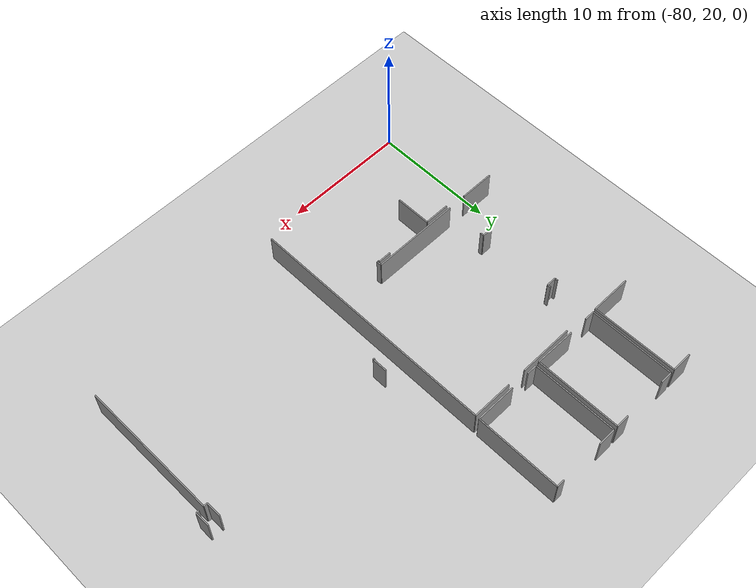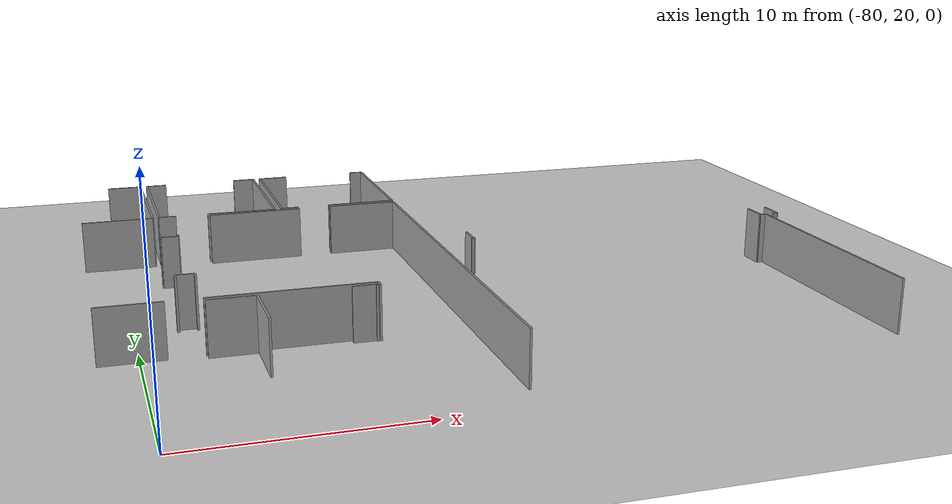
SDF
<sdf version="1.6">
 <world name="default">
  <model name="ground_plane">
   <static>1</static>
   <link name="link">
    <collision name="collision">
     <geometry><plane><normal>0 0 1</normal><size>100 100</size></plane></geometry>
     <surface><friction><ode><mu>100</mu><mu2>50</mu2></ode></friction></surface>
    </collision>
    <visual name="visual">
     <cast_shadows>0</cast_shadows>
     <geometry><plane><normal>0 0 1</normal><size>100 100</size></plane></geometry>
     <material>
      <script><uri>file://media/materials/scripts/gazebo.material</uri><name>Gazebo/Grey</name></script>
     </material>
    </visual>
   </link>
  </model>
  <model name="0510035741_A_40_1_104">
   <static>1</static>
   <link name="Wall_7">
    <collision name="Wall_7_Collision">
     <geometry><box><size>3.38631326954 0.1 2.5</size></box></geometry>
     <pose>1.69315663477 0 1.25 0 0 0</pose>
    </collision>
    <visual name="Wall_7_Visual">
     <pose>1.69315663477 0 1.25 0 0 0</pose>
     <geometry><box><size>3.38631326954 0.1 2.5</size></box></geometry>
     <material>
      <script><uri>file://media/materials/scripts/gazebo.material</uri><name>Gazebo/Grey</name></script>
      <ambient>1 1 1 1</ambient>
     </material>
    </visual>
    <pose>15.7619014357 -7.046437348 0 0 0 3.14159265359</pose>
   </link>
   <link name="Wall_11">
    <collision name="Wall_11_Collision">
     <geometry><box><size>1.69010864803 0.1 2.5</size></box></geometry>
     <pose>0.845054324014 0 1.25 0 0 0</pose>
    </collision>
    <visual name="Wall_11_Visual">
     <pose>0.845054324014 0 1.25 0 0 0</pose>
     <geometry><box><size>1.69010864803 0.1 2.5</size></box></geometry>
     <material>
      <script><uri>file://media/materials/scripts/gazebo.material</uri><name>Gazebo/Grey</name></script>
      <ambient>1 1 1 1</ambient>
     </material>
    </visual>
    <pose>14.0197230142 -0.00634997237761 0 0 0 0.0</pose>
   </link>
   <link name="Wall_12">
    <collision name="Wall_12_Collision">
     <geometry><box><size>7.04027993177 0.1 2.5</size></box></geometry>
     <pose>3.52013996588 0 1.25 0 0 0</pose>
    </collision>
    <visual name="Wall_12_Visual">
     <pose>3.52013996588 0 1.25 0 0 0</pose>
     <geometry><box><size>7.04027993177 0.1 2.5</size></box></geometry>
     <material>
      <script><uri>file://media/materials/scripts/gazebo.material</uri><name>Gazebo/Grey</name></script>
      <ambient>1 1 1 1</ambient>
     </material>
    </visual>
    <pose>15.7098316622 -0.00634997237761 0 0 0 -1.56340027881</pose>
   </link>
   <link name="Wall_13">
    <collision name="Wall_13_Collision">
     <geometry><box><size>7.04008737562 0.1 2.5</size></box></geometry>
     <pose>3.52004368781 0 1.25 0 0 0</pose>
    </collision>
    <visual name="Wall_13_Visual">
     <pose>3.52004368781 0 1.25 0 0 0</pose>
     <geometry><box><size>7.04008737562 0.1 2.5</size></box></geometry>
     <material>
      <script><uri>file://media/materials/scripts/gazebo.material</uri><name>Gazebo/Grey</name></script>
      <ambient>1 1 1 1</ambient>
     </material>
    </visual>
    <pose>21.8466989669 -7.046437348 0 0 0 1.57079632679</pose>
   </link>
   <link name="Wall_14">
    <collision name="Wall_14_Collision">
     <geometry><box><size>1.0949892368 0.1 2.5</size></box></geometry>
     <pose>0.547494618398 0 1.25 0 0 0</pose>
    </collision>
    <visual name="Wall_14_Visual">
     <pose>0.547494618398 0 1.25 0 0 0</pose>
     <geometry><box><size>1.0949892368 0.1 2.5</size></box></geometry>
     <material>
      <script><uri>file://media/materials/scripts/gazebo.material</uri><name>Gazebo/Grey</name></script>
      <ambient>1 1 1 1</ambient>
     </material>
    </visual>
    <pose>21.8466989669 -0.00634997237761 0 0 0 3.14159265359</pose>
   </link>
   <link name="Wall_15">
    <collision name="Wall_15_Collision">
     <geometry><box><size>1.01218559699 0.1 2.5</size></box></geometry>
     <pose>0.506092798496 0 1.25 0 0 0</pose>
    </collision>
    <visual name="Wall_15_Visual">
     <pose>0.506092798496 0 1.25 0 0 0</pose>
     <geometry><box><size>1.01218559699 0.1 2.5</size></box></geometry>
     <material>
      <script><uri>file://media/materials/scripts/gazebo.material</uri><name>Gazebo/Grey</name></script>
      <ambient>1 1 1 1</ambient>
     </material>
    </visual>
    <pose>17.0753297223 -0.00634997237761 0 0 0 3.14159265359</pose>
   </link>
   <link name="Wall_16">
    <collision name="Wall_16_Collision">
     <geometry><box><size>6.97709564963 0.1 2.5</size></box></geometry>
     <pose>3.48854782482 0 1.25 0 0 0</pose>
    </collision>
    <visual name="Wall_16_Visual">
     <pose>3.48854782482 0 1.25 0 0 0</pose>
     <geometry><box><size>6.97709564963 0.1 2.5</size></box></geometry>
     <material>
      <script><uri>file://media/materials/scripts/gazebo.material</uri><name>Gazebo/Grey</name></script>
      <ambient>1 1 1 1</ambient>
     </material>
    </visual>
    <pose>16.0631441253 -0.00634997237761 0 0 0 -1.57079632679</pose>
   </link>
   <link name="Wall_17">
    <collision name="Wall_17_Collision">
     <geometry><box><size>0.840482343902 0.1 2.5</size></box></geometry>
     <pose>0.420241171951 0 1.25 0 0 0</pose>
    </collision>
    <visual name="Wall_17_Visual">
     <pose>0.420241171951 0 1.25 0 0 0</pose>
     <geometry><box><size>0.840482343902 0.1 2.5</size></box></geometry>
     <material>
      <script><uri>file://media/materials/scripts/gazebo.material</uri><name>Gazebo/Grey</name></script>
      <ambient>1 1 1 1</ambient>
     </material>
    </visual>
    <pose>16.0631441253 -6.98344562201 0 0 0 0.0</pose>
   </link>
   <link name="Wall_18">
    <collision name="Wall_18_Collision">
     <geometry><box><size>3.37775672619 0.1 2.5</size></box></geometry>
     <pose>1.68887836309 0 1.25 0 0 0</pose>
    </collision>
    <visual name="Wall_18_Visual">
     <pose>1.68887836309 0 1.25 0 0 0</pose>
     <geometry><box><size>3.37775672619 0.1 2.5</size></box></geometry>
     <material>
      <script><uri>file://media/materials/scripts/gazebo.material</uri><name>Gazebo/Grey</name></script>
      <ambient>1 1 1 1</ambient>
     </material>
    </visual>
    <pose>18.4695296575 -6.98344562201 0 0 0 -0.0186500636139</pose>
   </link>
   <link name="Wall_19">
    <collision name="Wall_19_Collision">
     <geometry><box><size>6.97074567726 0.1 2.5</size></box></geometry>
     <pose>3.48537283863 0 1.25 0 0 0</pose>
    </collision>
    <visual name="Wall_19_Visual">
     <pose>3.48537283863 0 1.25 0 0 0</pose>
     <geometry><box><size>6.97074567726 0.1 2.5</size></box></geometry>
     <material>
      <script><uri>file://media/materials/scripts/gazebo.material</uri><name>Gazebo/Grey</name></script>
      <ambient>1 1 1 1</ambient>
     </material>
    </visual>
    <pose>22.2142353681 -6.97455566068 0 0 0 1.57079632679</pose>
   </link>
   <link name="Wall_20">
    <collision name="Wall_20_Collision">
     <geometry><box><size>1.48132155625 0.1 2.5</size></box></geometry>
     <pose>0.740660778126 0 1.25 0 0 0</pose>
    </collision>
    <visual name="Wall_20_Visual">
     <pose>0.740660778126 0 1.25 0 0 0</pose>
     <geometry><box><size>1.48132155625 0.1 2.5</size></box></geometry>
     <material>
      <script><uri>file://media/materials/scripts/gazebo.material</uri><name>Gazebo/Grey</name></script>
      <ambient>1 1 1 1</ambient>
     </material>
    </visual>
    <pose>22.2142353681 -0.00380998342657 0 0 0 0.0</pose>
   </link>
   <link name="Wall_21">
    <collision name="Wall_21_Collision">
     <geometry><box><size>0.653539157105 0.1 2.5</size></box></geometry>
     <pose>0.326769578552 0 1.25 0 0 0</pose>
    </collision>
    <visual name="Wall_21_Visual">
     <pose>0.326769578552 0 1.25 0 0 0</pose>
     <geometry><box><size>0.653539157105 0.1 2.5</size></box></geometry>
     <material>
      <script><uri>file://media/materials/scripts/gazebo.material</uri><name>Gazebo/Grey</name></script>
      <ambient>1 1 1 1</ambient>
     </material>
    </visual>
    <pose>27.355173005 -0.00380998342657 0 0 0 0.0</pose>
   </link>
   <link name="Wall_22">
    <collision name="Wall_22_Collision">
     <geometry><box><size>6.97074567726 0.1 2.5</size></box></geometry>
     <pose>3.48537283863 0 1.25 0 0 0</pose>
    </collision>
    <visual name="Wall_22_Visual">
     <pose>3.48537283863 0 1.25 0 0 0</pose>
     <geometry><box><size>6.97074567726 0.1 2.5</size></box></geometry>
     <material>
      <script><uri>file://media/materials/scripts/gazebo.material</uri><name>Gazebo/Grey</name></script>
      <ambient>1 1 1 1</ambient>
     </material>
    </visual>
    <pose>28.0087121621 -0.00380998342657 0 0 0 -1.57079632679</pose>
   </link>
   <link name="Wall_23">
    <collision name="Wall_23_Collision">
     <geometry><box><size>3.36446936456 0.1 2.5</size></box></geometry>
     <pose>1.68223468228 0 1.25 0 0 0</pose>
    </collision>
    <visual name="Wall_23_Visual">
     <pose>1.68223468228 0 1.25 0 0 0</pose>
     <geometry><box><size>3.36446936456 0.1 2.5</size></box></geometry>
     <material>
      <script><uri>file://media/materials/scripts/gazebo.material</uri><name>Gazebo/Grey</name></script>
      <ambient>1 1 1 1</ambient>
     </material>
    </visual>
    <pose>28.0087121621 -6.97455566068 0 0 0 3.14159265359</pose>
   </link>
   <link name="Wall_24">
    <collision name="Wall_24_Collision">
     <geometry><box><size>0.871470209105 0.1 2.5</size></box></geometry>
     <pose>0.435735104552 0 1.25 0 0 0</pose>
    </collision>
    <visual name="Wall_24_Visual">
     <pose>0.435735104552 0 1.25 0 0 0</pose>
     <geometry><box><size>0.871470209105 0.1 2.5</size></box></geometry>
     <material>
      <script><uri>file://media/materials/scripts/gazebo.material</uri><name>Gazebo/Grey</name></script>
      <ambient>1 1 1 1</ambient>
     </material>
    </visual>
    <pose>23.0857055772 -6.97455566068 0 0 0 3.14159265359</pose>
   </link>
   <link name="Wall_53">
    <collision name="Wall_53_Collision">
     <geometry><box><size>2.10819082937 0.1 2.5</size></box></geometry>
     <pose>1.05409541468 0 1.25 0 0 0</pose>
    </collision>
    <visual name="Wall_53_Visual">
     <pose>1.05409541468 0 1.25 0 0 0</pose>
     <geometry><box><size>2.10819082937 0.1 2.5</size></box></geometry>
     <material>
      <script><uri>file://media/materials/scripts/gazebo.material</uri><name>Gazebo/Grey</name></script>
      <ambient>1 1 1 1</ambient>
     </material>
    </visual>
    <pose>16.6610575244 -20.8436573301 0 0 0 0.0</pose>
   </link>
   <link name="Wall_54">
    <collision name="Wall_54_Collision">
     <geometry><box><size>2.92251128708 0.1 2.5</size></box></geometry>
     <pose>1.46125564354 0 1.25 0 0 0</pose>
    </collision>
    <visual name="Wall_54_Visual">
     <pose>1.46125564354 0 1.25 0 0 0</pose>
     <geometry><box><size>2.92251128708 0.1 2.5</size></box></geometry>
     <material>
      <script><uri>file://media/materials/scripts/gazebo.material</uri><name>Gazebo/Grey</name></script>
      <ambient>1 1 1 1</ambient>
     </material>
    </visual>
    <pose>18.7692483538 -20.8436573301 0 0 0 -1.57079632679</pose>
   </link>
   <link name="Wall_59">
    <collision name="Wall_59_Collision">
     <geometry><box><size>0.264158850909 0.1 2.5</size></box></geometry>
     <pose>0.132079425454 0 1.25 0 0 0</pose>
    </collision>
    <visual name="Wall_59_Visual">
     <pose>0.132079425454 0 1.25 0 0 0</pose>
     <geometry><box><size>0.264158850909 0.1 2.5</size></box></geometry>
     <material>
      <script><uri>file://media/materials/scripts/gazebo.material</uri><name>Gazebo/Grey</name></script>
      <ambient>1 1 1 1</ambient>
     </material>
    </visual>
    <pose>15.8264171551 -10.5318101866 0 0 0 -1.57079632679</pose>
   </link>
   <link name="Wall_60">
    <collision name="Wall_60_Collision">
     <geometry><box><size>0.801620512951 0.1 2.5</size></box></geometry>
     <pose>0.400810256475 0 1.25 0 0 0</pose>
    </collision>
    <visual name="Wall_60_Visual">
     <pose>0.400810256475 0 1.25 0 0 0</pose>
     <geometry><box><size>0.801620512951 0.1 2.5</size></box></geometry>
     <material>
      <script><uri>file://media/materials/scripts/gazebo.material</uri><name>Gazebo/Grey</name></script>
      <ambient>1 1 1 1</ambient>
     </material>
    </visual>
    <pose>15.8264171551 -10.7959690375 0 0 0 0.0</pose>
   </link>
   <link name="Wall_61">
    <collision name="Wall_61_Collision">
     <geometry><box><size>0.274572805608 0.1 2.5</size></box></geometry>
     <pose>0.137286402804 0 1.25 0 0 0</pose>
    </collision>
    <visual name="Wall_61_Visual">
     <pose>0.137286402804 0 1.25 0 0 0</pose>
     <geometry><box><size>0.274572805608 0.1 2.5</size></box></geometry>
     <material>
      <script><uri>file://media/materials/scripts/gazebo.material</uri><name>Gazebo/Grey</name></script>
      <ambient>1 1 1 1</ambient>
     </material>
    </visual>
    <pose>16.628037668 -10.7959690375 0 0 0 1.57079632679</pose>
   </link>
   <link name="Wall_62">
    <collision name="Wall_62_Collision">
     <geometry><box><size>0.308862656447 0.1 2.5</size></box></geometry>
     <pose>0.154431328224 0 1.25 0 0 0</pose>
    </collision>
    <visual name="Wall_62_Visual">
     <pose>0.154431328224 0 1.25 0 0 0</pose>
     <geometry><box><size>0.308862656447 0.1 2.5</size></box></geometry>
     <material>
      <script><uri>file://media/materials/scripts/gazebo.material</uri><name>Gazebo/Grey</name></script>
      <ambient>1 1 1 1</ambient>
     </material>
    </visual>
    <pose>16.683917425 -17.3407585677 0 0 0 1.57079632679</pose>
   </link>
   <link name="Wall_63">
    <collision name="Wall_63_Collision">
     <geometry><box><size>0.849880303021 0.1 2.5</size></box></geometry>
     <pose>0.42494015151 0 1.25 0 0 0</pose>
    </collision>
    <visual name="Wall_63_Visual">
     <pose>0.42494015151 0 1.25 0 0 0</pose>
     <geometry><box><size>0.849880303021 0.1 2.5</size></box></geometry>
     <material>
      <script><uri>file://media/materials/scripts/gazebo.material</uri><name>Gazebo/Grey</name></script>
      <ambient>1 1 1 1</ambient>
     </material>
    </visual>
    <pose>16.683917425 -17.0318959113 0 0 0 3.14159265359</pose>
   </link>
   <link name="Wall_64">
    <collision name="Wall_64_Collision">
     <geometry><box><size>0.305560670811 0.1 2.5</size></box></geometry>
     <pose>0.152780335406 0 1.25 0 0 0</pose>
    </collision>
    <visual name="Wall_64_Visual">
     <pose>0.152780335406 0 1.25 0 0 0</pose>
     <geometry><box><size>0.305560670811 0.1 2.5</size></box></geometry>
     <material>
      <script><uri>file://media/materials/scripts/gazebo.material</uri><name>Gazebo/Grey</name></script>
      <ambient>1 1 1 1</ambient>
     </material>
    </visual>
    <pose>15.8340371219 -17.0318959113 0 0 0 -1.57079632679</pose>
   </link>
   <link name="Wall_71">
    <collision name="Wall_71_Collision">
     <geometry><box><size>1.05993738927 0.1 2.5</size></box></geometry>
     <pose>0.529968694636 0 1.25 0 0 0</pose>
    </collision>
    <visual name="Wall_71_Visual">
     <pose>0.529968694636 0 1.25 0 0 0</pose>
     <geometry><box><size>1.05993738927 0.1 2.5</size></box></geometry>
     <material>
      <script><uri>file://media/materials/scripts/gazebo.material</uri><name>Gazebo/Grey</name></script>
      <ambient>1 1 1 1</ambient>
     </material>
    </visual>
    <pose>22.6996272566 -20.8322273798 0 0 0 0.0</pose>
   </link>
   <link name="Wall_72">
    <collision name="Wall_72_Collision">
     <geometry><box><size>0.133603418825 0.1 2.5</size></box></geometry>
     <pose>0.0668017094126 0 1.25 0 0 0</pose>
    </collision>
    <visual name="Wall_72_Visual">
     <pose>0.0668017094126 0 1.25 0 0 0</pose>
     <geometry><box><size>0.133603418825 0.1 2.5</size></box></geometry>
     <material>
      <script><uri>file://media/materials/scripts/gazebo.material</uri><name>Gazebo/Grey</name></script>
      <ambient>1 1 1 1</ambient>
     </material>
    </visual>
    <pose>23.7595646459 -20.8322273798 0 0 0 -1.57079632679</pose>
   </link>
   <link name="Wall_80">
    <collision name="Wall_80_Collision">
     <geometry><box><size>4.53261028315 0.1 2.5</size></box></geometry>
     <pose>2.26630514157 0 1.25 0 0 0</pose>
    </collision>
    <visual name="Wall_80_Visual">
     <pose>2.26630514157 0 1.25 0 0 0</pose>
     <geometry><box><size>4.53261028315 0.1 2.5</size></box></geometry>
     <material>
      <script><uri>file://media/materials/scripts/gazebo.material</uri><name>Gazebo/Grey</name></script>
      <ambient>1 1 1 1</ambient>
     </material>
    </visual>
    <pose>18.5452213283 -7.29916624863 0 0 0 0.0</pose>
   </link>
   <link name="Wall_81">
    <collision name="Wall_81_Collision">
     <geometry><box><size>3.34186346289 0.1 2.5</size></box></geometry>
     <pose>1.67093173145 0 1.25 0 0 0</pose>
    </collision>
    <visual name="Wall_81_Visual">
     <pose>1.67093173145 0 1.25 0 0 0</pose>
     <geometry><box><size>3.34186346289 0.1 2.5</size></box></geometry>
     <material>
      <script><uri>file://media/materials/scripts/gazebo.material</uri><name>Gazebo/Grey</name></script>
      <ambient>1 1 1 1</ambient>
     </material>
    </visual>
    <pose>24.6526247611 -7.29916624863 0 0 0 0.0</pose>
   </link>
   <link name="Wall_82">
    <collision name="Wall_82_Collision">
     <geometry><box><size>20.6275042704 0.1 2.5</size></box></geometry>
     <pose>10.3137521352 0 1.25 0 0 0</pose>
    </collision>
    <visual name="Wall_82_Visual">
     <pose>10.3137521352 0 1.25 0 0 0</pose>
     <geometry><box><size>20.6275042704 0.1 2.5</size></box></geometry>
     <material>
      <script><uri>file://media/materials/scripts/gazebo.material</uri><name>Gazebo/Grey</name></script>
      <ambient>1 1 1 1</ambient>
     </material>
    </visual>
    <pose>27.994488224 -7.29916624863 0 0 0 -1.57079632679</pose>
   </link>
   <link name="Wall_86">
    <collision name="Wall_86_Collision">
     <geometry><box><size>0.406398232168 0.1 2.5</size></box></geometry>
     <pose>0.203199116084 0 1.25 0 0 0</pose>
    </collision>
    <visual name="Wall_86_Visual">
     <pose>0.203199116084 0 1.25 0 0 0</pose>
     <geometry><box><size>0.406398232168 0.1 2.5</size></box></geometry>
     <material>
      <script><uri>file://media/materials/scripts/gazebo.material</uri><name>Gazebo/Grey</name></script>
      <ambient>1 1 1 1</ambient>
     </material>
    </visual>
    <pose>23.8952000559 -20.9424629003 0 0 0 1.57079632679</pose>
   </link>
   <link name="Wall_87">
    <collision name="Wall_87_Collision">
     <geometry><box><size>7.27198836685 0.1 2.5</size></box></geometry>
     <pose>3.63599418343 0 1.25 0 0 0</pose>
    </collision>
    <visual name="Wall_87_Visual">
     <pose>3.63599418343 0 1.25 0 0 0</pose>
     <geometry><box><size>7.27198836685 0.1 2.5</size></box></geometry>
     <material>
      <script><uri>file://media/materials/scripts/gazebo.material</uri><name>Gazebo/Grey</name></script>
      <ambient>1 1 1 1</ambient>
     </material>
    </visual>
    <pose>23.8952000559 -20.5360646681 0 0 0 3.14159265359</pose>
   </link>
   <link name="Wall_88">
    <collision name="Wall_88_Collision">
     <geometry><box><size>2.84148563954 0.1 2.5</size></box></geometry>
     <pose>1.42074281977 0 1.25 0 0 0</pose>
    </collision>
    <visual name="Wall_88_Visual">
     <pose>1.42074281977 0 1.25 0 0 0</pose>
     <geometry><box><size>2.84148563954 0.1 2.5</size></box></geometry>
     <material>
      <script><uri>file://media/materials/scripts/gazebo.material</uri><name>Gazebo/Grey</name></script>
      <ambient>1 1 1 1</ambient>
     </material>
    </visual>
    <pose>15.0781364101 -20.5360646681 0 0 0 3.14159265359</pose>
   </link>
   <link name="Wall_151">
    <collision name="Wall_151_Collision">
     <geometry><box><size>0.123951460811 0.1 2.5</size></box></geometry>
     <pose>0.0619757304056 0 1.25 0 0 0</pose>
    </collision>
    <visual name="Wall_151_Visual">
     <pose>0.0619757304056 0 1.25 0 0 0</pose>
     <geometry><box><size>0.123951460811 0.1 2.5</size></box></geometry>
     <material>
      <script><uri>file://media/materials/scripts/gazebo.material</uri><name>Gazebo/Grey</name></script>
      <ambient>1 1 1 1</ambient>
     </material>
    </visual>
    <pose>29.703900788 -15.3054654212 0 0 0 0.0</pose>
   </link>
   <link name="Wall_152">
    <collision name="Wall_152_Collision">
     <geometry><box><size>1.22503667109 0.1 2.5</size></box></geometry>
     <pose>0.612518335545 0 1.25 0 0 0</pose>
    </collision>
    <visual name="Wall_152_Visual">
     <pose>0.612518335545 0 1.25 0 0 0</pose>
     <geometry><box><size>1.22503667109 0.1 2.5</size></box></geometry>
     <material>
      <script><uri>file://media/materials/scripts/gazebo.material</uri><name>Gazebo/Grey</name></script>
      <ambient>1 1 1 1</ambient>
     </material>
    </visual>
    <pose>29.8278522488 -15.3054654212 0 0 0 1.57079632679</pose>
   </link>
   <link name="Wall_153">
    <collision name="Wall_153_Collision">
     <geometry><box><size>1.22503667109 0.1 2.5</size></box></geometry>
     <pose>0.612518335545 0 1.25 0 0 0</pose>
    </collision>
    <visual name="Wall_153_Visual">
     <pose>0.612518335545 0 1.25 0 0 0</pose>
     <geometry><box><size>1.22503667109 0.1 2.5</size></box></geometry>
     <material>
      <script><uri>file://media/materials/scripts/gazebo.material</uri><name>Gazebo/Grey</name></script>
      <ambient>1 1 1 1</ambient>
     </material>
    </visual>
    <pose>44.9059886589 -14.0804287501 0 0 0 -1.57079632679</pose>
   </link>
   <link name="Wall_154">
    <collision name="Wall_154_Collision">
     <geometry><box><size>0.30302068186 0.1 2.5</size></box></geometry>
     <pose>0.15151034093 0 1.25 0 0 0</pose>
    </collision>
    <visual name="Wall_154_Visual">
     <pose>0.15151034093 0 1.25 0 0 0</pose>
     <geometry><box><size>0.30302068186 0.1 2.5</size></box></geometry>
     <material>
      <script><uri>file://media/materials/scripts/gazebo.material</uri><name>Gazebo/Grey</name></script>
      <ambient>1 1 1 1</ambient>
     </material>
    </visual>
    <pose>44.9059886589 -15.3054654212 0 0 0 0.0</pose>
   </link>
   <link name="Wall_155">
    <collision name="Wall_155_Collision">
     <geometry><box><size>11.434014262 0.1 2.5</size></box></geometry>
     <pose>5.71700713102 0 1.25 0 0 0</pose>
    </collision>
    <visual name="Wall_155_Visual">
     <pose>5.71700713102 0 1.25 0 0 0</pose>
     <geometry><box><size>11.434014262 0.1 2.5</size></box></geometry>
     <material>
      <script><uri>file://media/materials/scripts/gazebo.material</uri><name>Gazebo/Grey</name></script>
      <ambient>1 1 1 1</ambient>
     </material>
    </visual>
    <pose>45.2090093408 -15.3054654212 0 0 0 -1.57079632679</pose>
   </link>
   <link name="Wall_163">
    <collision name="Wall_163_Collision">
     <geometry><box><size>0.235202976867 0.1 2.5</size></box></geometry>
     <pose>0.117601488434 0 1.25 0 0 0</pose>
    </collision>
    <visual name="Wall_163_Visual">
     <pose>0.117601488434 0 1.25 0 0 0</pose>
     <geometry><box><size>0.235202976867 0.1 2.5</size></box></geometry>
     <material>
      <script><uri>file://media/materials/scripts/gazebo.material</uri><name>Gazebo/Grey</name></script>
      <ambient>1 1 1 1</ambient>
     </material>
    </visual>
    <pose>45.6245515332 -15.2871775008 0 0 0 0.0</pose>
   </link>
   <link name="Wall_164">
    <collision name="Wall_164_Collision">
     <geometry><box><size>1.19684279373 0.1 2.5</size></box></geometry>
     <pose>0.598421396867 0 1.25 0 0 0</pose>
    </collision>
    <visual name="Wall_164_Visual">
     <pose>0.598421396867 0 1.25 0 0 0</pose>
     <geometry><box><size>1.19684279373 0.1 2.5</size></box></geometry>
     <material>
      <script><uri>file://media/materials/scripts/gazebo.material</uri><name>Gazebo/Grey</name></script>
      <ambient>1 1 1 1</ambient>
     </material>
    </visual>
    <pose>45.8597545101 -15.2871775008 0 0 0 1.57079632679</pose>
   </link>
   <pose>-93.95 49.6727497285 0 0 0 0</pose>
  </model>
 </world>
</sdf>
